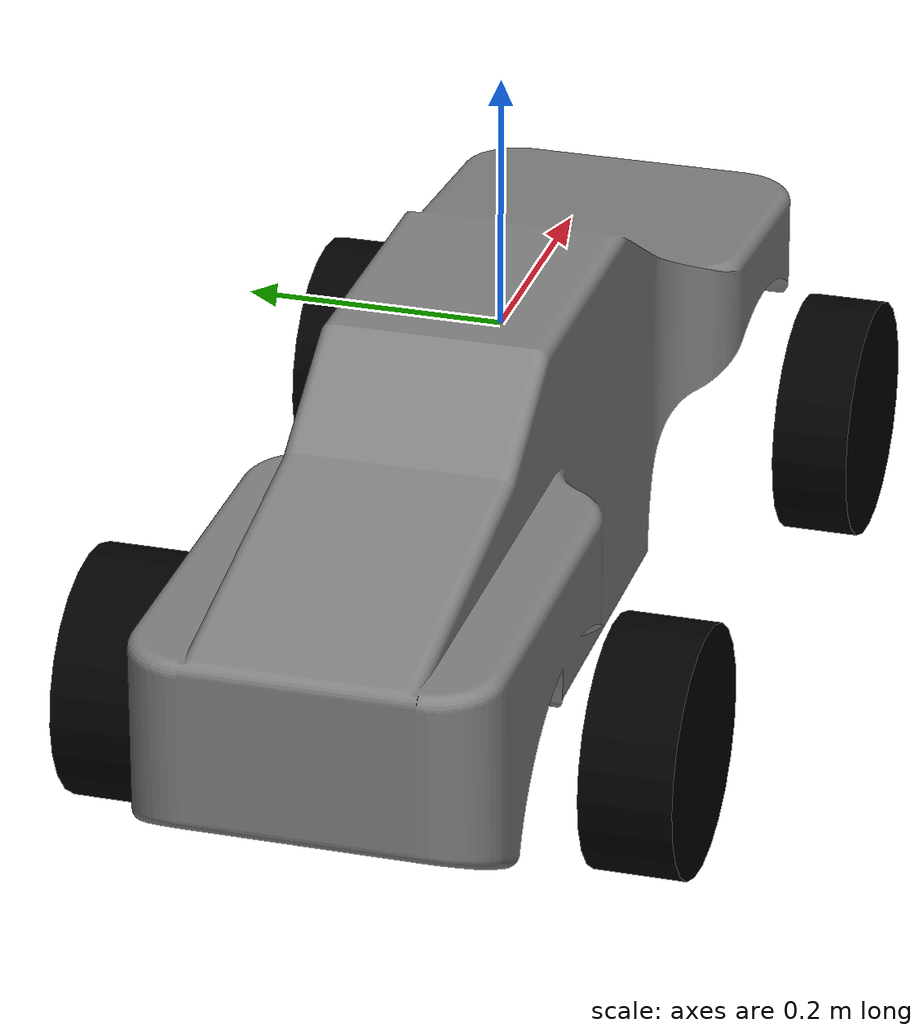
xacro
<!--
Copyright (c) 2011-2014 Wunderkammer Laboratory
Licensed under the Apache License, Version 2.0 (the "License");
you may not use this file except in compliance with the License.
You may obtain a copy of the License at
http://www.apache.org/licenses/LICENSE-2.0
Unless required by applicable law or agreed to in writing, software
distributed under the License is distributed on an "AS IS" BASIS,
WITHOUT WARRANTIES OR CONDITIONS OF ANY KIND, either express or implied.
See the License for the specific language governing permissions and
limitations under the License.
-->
<?xml version="1.0"?>

<robot name="hpi_baja" xmlns:xacro="http://www.ros.org/wiki/xacro">
  <!-- Degree-to-radian conversions -->
  <xacro:property name="degrees_45" value="0.785398163"/>
  <xacro:property name="degrees_25" value="0.436332313"/>
  <xacro:property name="degrees_90" value="1.57079633"/>

  <!-- chassis_length is measured along the x axis, chassis_width
       along the y axis, and chassis_height along the z axis. -->
  <xacro:property name="chassis_length" value="0.90"/>
  <xacro:property name="chassis_width" value="0.25"/>
  <xacro:property name="chassis_height" value="0.25"/>
  <xacro:property name="chassis_mass" value="19.555"/>

  <xacro:property name="hub_dia" value="0.024"/>
  <xacro:property name="tire_dia" value="0.19"/>
  <xacro:property name="hex_hub_depth" value="0.035"/>
  <xacro:property name="front_tire_width" value="0.06"/>
  <xacro:property name="front_wheel_mass" value="0.495"/>
  <xacro:property name="rear_tire_width" value="0.07"/>
  <xacro:property name="rear_wheel_mass" value="0.660"/>

  <xacro:property name="wheelbase" value="0.570"/>
  <xacro:property name="hex_hub_dist" value="0.4"/>
  <xacro:property name="axle_length" value="0.03"/>
  <xacro:property name="wheel_travel" value="0.1"/>
  <xacro:property name="shock_z_offset" value="0.11"/>

  <xacro:property name="front_wheel_travel" value="0.12"/>
  <xacro:property name="front_shock_z_offset" value="0.09"/>
  <xacro:property name="rear_wheel_travel" value="0.1"/>
  <xacro:property name="rear_shock_z_offset" value="0.12"/>

  <xacro:property name="shock_eff_limit" value="157.6141515"/>
  <xacro:property name="shock_vel_limit" value="1000"/>

  <xacro:property name="front_axle_eff_limit" value="2"/>
  <xacro:property name="rear_axle_eff_limit" value="7"/>
  <xacro:property name="axle_vel_limit" value="282.315789474"/>

  <!-- These constants are used to simulate a Traxxas 2056 servo operated at
       6 V. servo_stall_torque is measured in N m. servo_no_load_speed is
       measured in rad/s. -->
  <xacro:property name="servo_stall_torque" value="3.432620346181713"/>
  <xacro:property name="servo_no_load_speed" value="6.98131700798"/>

  <material name="chassis_mat">
    <color rgba="0.5 0.5 0.5 1"/>
  </material>
  <material name="tire_mat">
    <color rgba="0 0 0 1"/>
  </material>

  <!-- Null inertial element. This is needed to make the model work with
       Gazebo. -->
  <xacro:macro name="null_inertial">
    <inertial>
      <mass value="0.001"/>
      <inertia ixx="0.001" ixy="0" ixz="0" iyy="0.001" iyz="0" izz="0.001"/>
    </inertial>
  </xacro:macro>

  <xacro:macro name="thick_walled_tube_inertial"
               params="inner_rad outer_rad height mass">
    <inertial>
      <mass value="${mass}"/>
      <inertia ixx="${(1 / 12) * mass * (3 * (inner_rad * inner_rad +
                    outer_rad * outer_rad) + height * height)}"
               ixy="0" ixz="0"
               iyy="0.0095910648"
               iyz="0"
               izz="${mass * (inner_rad * inner_rad +
                    outer_rad * outer_rad) / 2}"/>
    </inertial>
  </xacro:macro>

  <!-- Shock absorber -->
  <xacro:macro name="shock"
               params="lr_prefix fr_prefix lr_reflect fr_reflect child">
    <joint name="${lr_prefix}_${fr_prefix}_shock" type="prismatic">
      <parent link="chassis"/>
      <child link="${child}"/>

      <origin xyz="${fr_reflect * wheelbase / 2}
                   ${lr_reflect * ((hex_hub_dist / 2))}
                   ${-chassis_height/2 + (wheel_travel / 2) - shock_z_offset}"/>
      <axis xyz="0 0 -1"/>
      <limit lower="${-wheel_travel / 2}" upper="${wheel_travel / 2}"
             effort="${shock_eff_limit}" velocity="${shock_vel_limit}"/>
      <dynamics damping="65" friction="0.0"/>
    </joint>
    <transmission name="${lr_prefix}_${fr_prefix}_shock_trans">
      <type>transmission_interface/SimpleTransmission</type>
      <joint name="${lr_prefix}_${fr_prefix}_shock">
        <hardwareInterface>EffortJointInterface</hardwareInterface>
      </joint>
      <actuator name="${lr_prefix}_${fr_prefix}_shock_act">
        <!-- This hardwareInterface element exists for compatibility
             with ROS Hydro. -->
        <hardwareInterface>EffortJointInterface</hardwareInterface>
        <mechanicalReduction>1</mechanicalReduction>
      </actuator>
    </transmission>
  </xacro:macro>

  <!-- The "wheel" macro defines an axle carrier, axle, and wheel. -->
  <xacro:macro name="wheel" params="lr_prefix fr_prefix lr_reflect tire_width wheel_mass axle_eff_limit">
    <link name="${lr_prefix}_${fr_prefix}_axle_carrier">
      <xacro:null_inertial/>
    </link>

    <!-- The left and right axles have the same axis so that identical
         rotation values cause the wheels to rotate in the same direction. -->
    <joint name="${lr_prefix}_${fr_prefix}_axle" type="continuous">
      <parent link="${lr_prefix}_${fr_prefix}_axle_carrier"/>
      <child link="${lr_prefix}_${fr_prefix}_wheel"/>
      <origin rpy="${degrees_90} 0 0"/>
      <axis xyz="0 0 -1"/>
      <limit effort="${axle_eff_limit}" velocity="${axle_vel_limit}"/>
      <dynamics damping="0.015" friction="0.0"/>
    </joint>

    <transmission name="${lr_prefix}_${fr_prefix}_axle_trans">
      <type>transmission_interface/SimpleTransmission</type>
      <joint name="${lr_prefix}_${fr_prefix}_axle">
        <hardwareInterface>EffortJointInterface</hardwareInterface>
      </joint>
      <actuator name="${lr_prefix}_${fr_prefix}_axle_act">
        <!-- This hardwareInterface element exists for compatibility
             with ROS Hydro. -->
        <hardwareInterface>EffortJointInterface</hardwareInterface>
        <mechanicalReduction>1</mechanicalReduction>
      </actuator>
    </transmission>

    <link name="${lr_prefix}_${fr_prefix}_wheel">
      <visual>
        <origin xyz="0 0 0"/>
        <geometry>
          <cylinder radius="${tire_dia / 2.0}" length="${tire_width}"/>
        </geometry>
        <material name="tire_mat"/>
      </visual>

      <collision name="collision">
        <origin xyz="0 0 0"/>
        <geometry>
          <cylinder radius="${tire_dia / 2.0}" length="${tire_width}"/>
        </geometry>
      </collision>

      <xacro:thick_walled_tube_inertial
          inner_rad="${hub_dia / 2.0}" outer_rad="${tire_dia / 2.0}"
          height="${tire_width}" mass="${wheel_mass}"/>
    </link>

    <gazebo reference="${lr_prefix}_${fr_prefix}_wheel">
      <material>Gazebo/Black</material>
      <mu1>0.5</mu1>
      <mu2>0.45</mu2>
      <kp  value="10000000.0" />
      <kd  value="1.0" />
    </gazebo>
  </xacro:macro>

  <!-- Front wheel -->
  <xacro:macro name="front_wheel"
               params="lr_prefix fr_prefix lr_reflect fr_reflect tire_width
                       wheel_mass axle_eff_limit">
    <xacro:shock lr_prefix="${lr_prefix}" fr_prefix="${fr_prefix}"
                 lr_reflect="${lr_reflect}" fr_reflect="${fr_reflect}"
                 child="${lr_prefix}_steering_link"/>

    <link name="${lr_prefix}_steering_link">
      <xacro:null_inertial/>
    </link>

    <joint name="${lr_prefix}_steering_joint" type="revolute">
      <parent link="${lr_prefix}_steering_link"/>
      <child link="${lr_prefix}_${fr_prefix}_axle_carrier"/>
      <axis xyz="0 0 1"/>
      <limit lower="${-degrees_25}" upper="${degrees_25}"
             effort="${servo_stall_torque}" velocity="${servo_no_load_speed}"/>
    </joint>

    <transmission name="${lr_prefix}_steering_trans">
      <type>transmission_interface/SimpleTransmission</type>
      <joint name="${lr_prefix}_steering_joint">
        <hardwareInterface>EffortJointInterface</hardwareInterface>
      </joint>
      <actuator name="${lr_prefix}_steering_act">

        <!-- This hardwareInterface element exists for compatibility
             with ROS Hydro. -->
        <hardwareInterface>EffortJointInterface</hardwareInterface>
        <mechanicalReduction>1</mechanicalReduction>
      </actuator>
    </transmission>

    <xacro:wheel lr_prefix="${lr_prefix}" fr_prefix="${fr_prefix}"
                 lr_reflect="${lr_reflect}" tire_width="${tire_width}"
                 wheel_mass="${wheel_mass}"
                 axle_eff_limit="${axle_eff_limit}"/>
  </xacro:macro>

  <!-- Rear wheel -->
  <xacro:macro name="rear_wheel"
               params="lr_prefix fr_prefix lr_reflect fr_reflect tire_width
                       wheel_mass axle_eff_limit">
    <xacro:shock lr_prefix="${lr_prefix}" fr_prefix="${fr_prefix}"
                 lr_reflect="${lr_reflect}" fr_reflect="${fr_reflect}"
                 child="${lr_prefix}_${fr_prefix}_axle_carrier"/>
    <xacro:wheel lr_prefix="${lr_prefix}" fr_prefix="${fr_prefix}"
                 lr_reflect="${lr_reflect}" tire_width="${tire_width}"
                 wheel_mass="${wheel_mass}"
                 axle_eff_limit="${axle_eff_limit}"/>
  </xacro:macro>

  <!-- base_link must have geometry so that its axes can be displayed in
       rviz. -->
  <link name="base_link">
    <visual>
      <geometry>
        <box size="0.01 0.01 0.01"/>
      </geometry>
      <material name="chassis_mat"/>
    </visual>
  </link>

  <gazebo reference="base_link">
    <material>Gazebo/Grey</material>
  </gazebo>

  <!-- Chassis -->
  <link name="chassis">
    <visual>
      <origin xyz="${-chassis_length/2 + 0.08} 0 ${-chassis_height}"/>
      <geometry>
        <mesh filename="package://ackermann_vehicle_description/urdf/5scChassis.stl" scale="0.01 0.01 0.01" />
      </geometry>
      <material name="chassis_mat"/>
    </visual>

    <collision>
      <origin xyz="${-chassis_length/2 + 0.08} 0 ${-chassis_height}"/>
      <geometry>
        <mesh filename="package://ackermann_vehicle_description/urdf/5scChassis.stl" scale="0.01 0.01 0.01" />
      </geometry>
    </collision>

    <inertial>
      <mass value="${chassis_mass}"/>
      <inertia ixx="0.003881755275"
               ixy="0" ixz="0"
               iyy="0.011310597718"
               iyz="0"
               izz="0.01243832479"/>
    </inertial>
  </link>
  <gazebo reference="chassis">
    <material>Gazebo/Grey</material>
    <mu1>0.3</mu1>
    <mu2>0.4</mu2>
  </gazebo>

  <joint name="base_link_to_chasis" type="fixed">
    <parent link="base_link"/>
    <child link="chassis"/>
  </joint>

  <joint name="camera_joint" type="fixed">
    <axis xyz="0 0 0" />
    <origin xyz="0.12 0 0.05" rpy="0 0 0"/>
    <parent link="base_link"/>
    <child link="camera_link"/>
  </joint>

  <!-- Camera -->
  <link name="camera_link">
    <collision>
      <origin xyz="0 0 0" rpy="0 0 0"/>
      <geometry>
    <box size="0.02 0.02 0.02"/>
      </geometry>
    </collision>
    <inertial>
      <mass value="1e-5" />
      <origin xyz="0 0 0" rpy="0 0 0"/>
      <inertia ixx="1e-6" ixy="0" ixz="0" iyy="1e-6" iyz="0" izz="1e-6" />
    </inertial>

  </link>

  <!-- camera -->
  <gazebo reference="camera_link">
    <sensor type="multicamera" name="stereo_camera">
      <update_rate>30.0</update_rate>
      <camera name="left">
        <pose>0 0.07 0 0 0 0</pose>
        <horizontal_fov>1.3962634</horizontal_fov>
        <image>
          <width>1280</width>
          <height>1024</height>
          <format>R8G8B8</format>
        </image>
        <clip>
          <near>0.02</near>
          <far>300</far>
        </clip>
        <noise>
          <type>gaussian</type>
          <mean>0.0</mean>
          <stddev>0.009</stddev>
        </noise>
      </camera>
      <camera name="right">
        <pose>0.02 -0.07 0 0 0 0</pose>
        <horizontal_fov>3.0</horizontal_fov>
        <image>
          <width>1280</width>
          <height>1024</height>
          <format>R8G8B8</format>
        </image>
        <clip>
          <near>0.02</near>
          <far>300</far>
        </clip>
        <noise>
          <type>gaussian</type>
          <mean>0.0</mean>
          <stddev>0.009</stddev>
        </noise>
      </camera>
      <plugin name="stereo_camera_controller" filename="libgazebo_ros_multicamera.so">
        <alwaysOn>true</alwaysOn>
        <updateRate>60.0</updateRate>
        <cameraName>camera</cameraName>
        <imageTopicName>image_raw</imageTopicName>
        <cameraInfoTopicName>camera_info</cameraInfoTopicName>
        <frameName>left_camera_optical_frame</frameName>
        <hackBaseline>0.14</hackBaseline>
        <distortionK1>-0.212652</distortionK1>
        <distortionK2>0.085434</distortionK2>
        <distortionK3>-0.000165</distortionK3>
        <distortionT1>-0.000336</distortionT1>
        <distortionT2>0.0</distortionT2>
      </plugin>
    </sensor>
  </gazebo>

  <!-- Wheels -->
  <xacro:front_wheel lr_prefix="left" fr_prefix="front"
                     lr_reflect="1" fr_reflect="1"
                     tire_width="${front_tire_width}"
                     wheel_mass="${front_wheel_mass}"
                     axle_eff_limit="${front_axle_eff_limit}"/>
  <xacro:front_wheel lr_prefix="right" fr_prefix="front"
                     lr_reflect="-1" fr_reflect="1"
                     tire_width="${front_tire_width}"
                     wheel_mass="${front_wheel_mass}"
                     axle_eff_limit="${front_axle_eff_limit}"/>
  <xacro:rear_wheel lr_prefix="left" fr_prefix="rear"
                    lr_reflect="1" fr_reflect="-1"
                    tire_width="${rear_tire_width}"
                    wheel_mass="${rear_wheel_mass}"
                    axle_eff_limit="${rear_axle_eff_limit}"/>
  <xacro:rear_wheel lr_prefix="right" fr_prefix="rear"
                    lr_reflect="-1" fr_reflect="-1"
                    tire_width="${rear_tire_width}"
                    wheel_mass="${rear_wheel_mass}"
                    axle_eff_limit="${rear_axle_eff_limit}"/>

  <gazebo>
    <plugin name="gazebo_ros_control" filename="libgazebo_ros_control.so"/>

    <plugin name="imu" filename="libhector_gazebo_ros_imu.so">
      <updateRate>200.0</updateRate>
      <bodyName>base_link</bodyName>
      <frameId>base_link</frameId>
      <topicName>imu</topicName>
      <rpyOffset>0 0 0</rpyOffset>
      <xyzOffset>0 0 0</xyzOffset>
      <accelDrift>0.001 0.001 0.001</accelDrift>
      <accelGaussianNoise>0.001 0.001 0.001</accelGaussianNoise>
      <rateDrift>0.01 0.01 0.01</rateDrift>
      <rateGaussianNoise>0.05 0.05 0.015</rateGaussianNoise>
      <headingDrift>0.001 0.001 0.001</headingDrift>
      <headingGaussianNoise>0.001 0.001 0.0005</headingGaussianNoise>
    </plugin>

    <plugin name="gps" filename="libhector_gazebo_ros_gps.so">
      <updateRate>20.0</updateRate>
      <bodyName>base_link</bodyName>
      <frameId>base_link</frameId>
      <topicName>gpsRoverStatus</topicName>
      <velocityTopicName>fix_velocity</velocityTopicName>
      <referenceLatitude>33.774497</referenceLatitude>
      <referenceLongitude>-84.405001</referenceLongitude>
      <drift>0.3 0.3 0.3</drift>
      <gaussianNoise>0.01 0.01 0.01</gaussianNoise>
      <velocityDrift>0 0 0</velocityDrift>
      <velocityGaussianNoise>0.05 0.05 0.05</velocityGaussianNoise>
    </plugin>

  </gazebo>
</robot>
